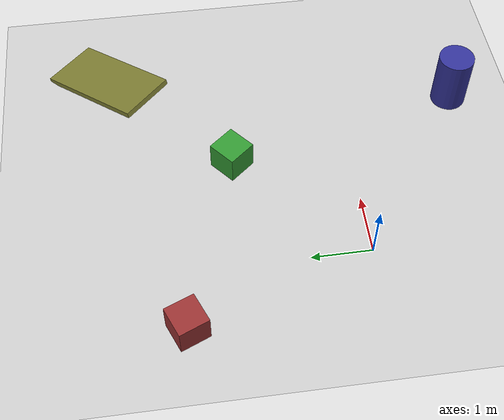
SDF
<?xml version="1.0" ?>
<sdf version="1.6">
  <world name="snake_world">
    <!-- A global light source -->
    <include>
      <uri>model://sun</uri>
    </include>

    <!-- Ground plane with increased friction -->
    <model name="ground_plane">
      <static>true</static>
      <link name="link">
        <collision name="collision">
          <geometry>
            <plane>
              <normal>0 0 1</normal>
              <size>100 100</size>
            </plane>
          </geometry>
          <surface>
            <friction>
              <ode>
                <mu>1.0</mu>
                <mu2>1.0</mu2>
              </ode>
            </friction>
          </surface>
        </collision>
        <visual name="visual">
          <geometry>
            <plane>
              <normal>0 0 1</normal>
              <size>100 100</size>
            </plane>
          </geometry>
          <material>
            <ambient>0.8 0.8 0.8 1</ambient>
            <diffuse>0.8 0.8 0.8 1</diffuse>
            <specular>0.1 0.1 0.1 1</specular>
          </material>
        </visual>
      </link>
    </model>

    <!-- Obstacles -->
    <!-- Small boxes to navigate around -->
    <model name="box1">
      <static>true</static>
      <pose>2 2 0.25 0 0 0.7</pose>
      <link name="link">
        <collision name="collision">
          <geometry>
            <box>
              <size>0.5 0.5 0.5</size>
            </box>
          </geometry>
        </collision>
        <visual name="visual">
          <geometry>
            <box>
              <size>0.5 0.5 0.5</size>
            </box>
          </geometry>
          <material>
            <ambient>0.2 0.6 0.2 1</ambient>
            <diffuse>0.2 0.6 0.2 1</diffuse>
          </material>
        </visual>
      </link>
    </model>

    <model name="box2">
      <static>true</static>
      <pose>-1 3 0.25 0 0 0.4</pose>
      <link name="link">
        <collision name="collision">
          <geometry>
            <box>
              <size>0.5 0.5 0.5</size>
            </box>
          </geometry>
        </collision>
        <visual name="visual">
          <geometry>
            <box>
              <size>0.5 0.5 0.5</size>
            </box>
          </geometry>
          <material>
            <ambient>0.6 0.2 0.2 1</ambient>
            <diffuse>0.6 0.2 0.2 1</diffuse>
          </material>
        </visual>
      </link>
    </model>

    <!-- Cylindrical obstacles -->
    <model name="cylinder1">
      <static>true</static>
      <pose>3 -2 0.5 0 0 0</pose>
      <link name="link">
        <collision name="collision">
          <geometry>
            <cylinder>
              <radius>0.3</radius>
              <length>1.0</length>
            </cylinder>
          </geometry>
        </collision>
        <visual name="visual">
          <geometry>
            <cylinder>
              <radius>0.3</radius>
              <length>1.0</length>
            </cylinder>
          </geometry>
          <material>
            <ambient>0.2 0.2 0.6 1</ambient>
            <diffuse>0.2 0.2 0.6 1</diffuse>
          </material>
        </visual>
      </link>
    </model>

    <!-- Small ramp -->
    <model name="ramp1">
      <static>true</static>
      <pose>4 4 0.2 0 0.2 0.785</pose>
      <link name="link">
        <collision name="collision">
          <geometry>
            <box>
              <size>2.0 1.0 0.1</size>
            </box>
          </geometry>
        </collision>
        <visual name="visual">
          <geometry>
            <box>
              <size>2.0 1.0 0.1</size>
            </box>
          </geometry>
          <material>
            <ambient>0.5 0.5 0.2 1</ambient>
            <diffuse>0.5 0.5 0.2 1</diffuse>
          </material>
        </visual>
      </link>
    </model>

    <!-- Physics settings -->
    <physics type="ode">
      <real_time_update_rate>1000.0</real_time_update_rate>
      <max_step_size>0.001</max_step_size>
      <real_time_factor>1</real_time_factor>
      <ode>
        <solver>
          <type>quick</type>
          <iters>50</iters>
          <sor>1.3</sor>
        </solver>
      </ode>
    </physics>

    <!-- Improved lighting -->
    <light type="directional" name="sun2">
      <cast_shadows>true</cast_shadows>
      <pose>-5 -5 10 0.1 0.1 0</pose>
      <diffuse>0.6 0.6 0.6 1</diffuse>
      <specular>0.2 0.2 0.2 1</specular>
      <direction>0.1 0.1 -0.9</direction>
    </light>
  </world>
</sdf>
